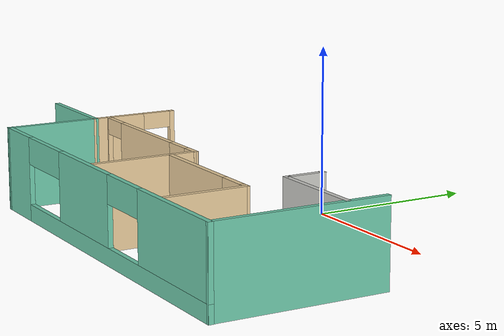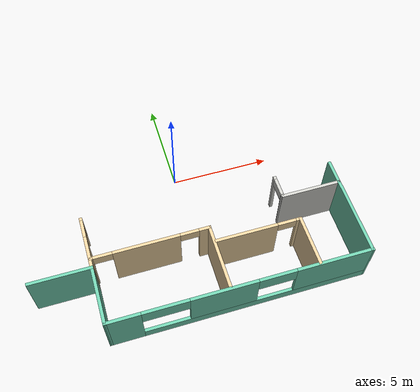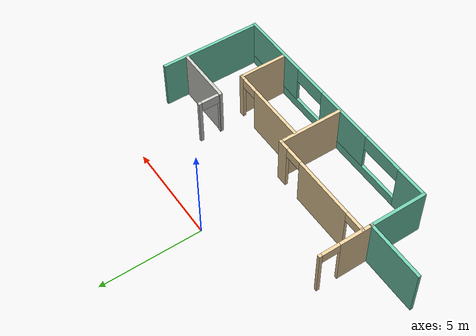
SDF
<sdf version="1.6">
 <model name="Building">
  <link name="Wall_269">
   <pose>-5.10842 -4.98169 0 0 -0 0</pose>
   <visual name="Wall_269_Visual">
    <pose>0 0 1.25 0 -0 0</pose>
    <geometry><box><size>0.15 0.15 2.5</size></box></geometry>
    <material>
     <script><uri>file://media/materials/scripts/gazebo.material</uri><name>Gazebo/Grey</name></script>
     <ambient>1 1 1 1</ambient>
     <shader type="pixel"/>
     <diffuse>0.7 0.7 0.7 1</diffuse>
     <specular>0.01 0.01 0.01 1</specular>
     <emissive>0 0 0 1</emissive>
    </material>
    <meta><layer>0</layer></meta>
   </visual>
   <collision name="Wall_269_Collision">
    <pose>0 0 1.25 0 -0 0</pose>
    <geometry><box><size>0.15 0.15 2.5</size></box></geometry>
    <surface>
     <friction>
      <ode><mu>1</mu><mu2>1</mu2><fdir1>0 0 0</fdir1><slip1>0</slip1><slip2>0</slip2></ode>
      <torsional>
       <coefficient>1</coefficient>
       <patch_radius>0</patch_radius>
       <surface_radius>0</surface_radius>
       <use_patch_radius>1</use_patch_radius>
       <ode><slip>0</slip></ode>
      </torsional>
     </friction>
     <bounce><restitution_coefficient>0</restitution_coefficient><threshold>1e+06</threshold></bounce>
     <contact>
      <collide_without_contact>0</collide_without_contact>
      <collide_without_contact_bitmask>1</collide_without_contact_bitmask>
      <collide_bitmask>1</collide_bitmask>
      <ode>
       <soft_cfm>0</soft_cfm>
       <soft_erp>0.2</soft_erp>
       <kp>1e+13</kp>
       <kd>1</kd>
       <max_vel>0.01</max_vel>
       <min_depth>0</min_depth>
      </ode>
      <bullet>
       <split_impulse>1</split_impulse>
       <split_impulse_penetration_threshold>-0.01</split_impulse_penetration_threshold>
       <soft_cfm>0</soft_cfm>
       <soft_erp>0.2</soft_erp>
       <kp>1e+13</kp>
       <kd>1</kd>
      </bullet>
     </contact>
    </surface>
   </collision>
  </link>
  <link name="Wall_270">
   <pose>-5.10842 -3.68169 0 0 -0 1.5708</pose>
   <visual name="Wall_270_Visual_0">
    <pose>-0.529099 0 1.25 0 -0 0</pose>
    <geometry><box><size>1.6918 0.15 2.5</size></box></geometry>
    <material>
     <script><uri>file://media/materials/scripts/gazebo.material</uri><name>Gazebo/Grey</name></script>
     <ambient>0.921569 0.807843 0.615686 1</ambient>
     <shader type="pixel"/>
     <diffuse>0.7 0.7 0.7 1</diffuse>
     <specular>0.01 0.01 0.01 1</specular>
     <emissive>0 0 0 1</emissive>
    </material>
    <meta><layer>0</layer></meta>
   </visual>
   <visual name="Wall_270_Visual_1">
    <pose>1.2959 0 1.25 0 -0 0</pose>
    <geometry><box><size>0.158198 0.15 2.5</size></box></geometry>
    <material>
     <script><uri>file://media/materials/scripts/gazebo.material</uri><name>Gazebo/Grey</name></script>
     <ambient>0.921569 0.807843 0.615686 1</ambient>
     <shader type="pixel"/>
     <diffuse>0.7 0.7 0.7 1</diffuse>
     <specular>0.01 0.01 0.01 1</specular>
     <emissive>0 0 0 1</emissive>
    </material>
    <meta><layer>0</layer></meta>
   </visual>
   <visual name="Wall_270_Visual_2">
    <pose>0.766802 0 2.25 0 -0 0</pose>
    <geometry><box><size>0.9 0.15 0.5</size></box></geometry>
    <material>
     <script><uri>file://media/materials/scripts/gazebo.material</uri><name>Gazebo/Grey</name></script>
     <ambient>0.921569 0.807843 0.615686 1</ambient>
     <shader type="pixel"/>
     <diffuse>0.7 0.7 0.7 1</diffuse>
     <specular>0.01 0.01 0.01 1</specular>
     <emissive>0 0 0 1</emissive>
    </material>
    <meta><layer>0</layer></meta>
   </visual>
   <collision name="Wall_270_Collision_0">
    <pose>-0.529099 0 1.25 0 -0 0</pose>
    <geometry><box><size>1.6918 0.15 2.5</size></box></geometry>
    <surface>
     <friction>
      <ode><mu>1</mu><mu2>1</mu2><fdir1>0 0 0</fdir1><slip1>0</slip1><slip2>0</slip2></ode>
      <torsional>
       <coefficient>1</coefficient>
       <patch_radius>0</patch_radius>
       <surface_radius>0</surface_radius>
       <use_patch_radius>1</use_patch_radius>
       <ode><slip>0</slip></ode>
      </torsional>
     </friction>
     <bounce><restitution_coefficient>0</restitution_coefficient><threshold>1e+06</threshold></bounce>
     <contact>
      <collide_without_contact>0</collide_without_contact>
      <collide_without_contact_bitmask>1</collide_without_contact_bitmask>
      <collide_bitmask>1</collide_bitmask>
      <ode>
       <soft_cfm>0</soft_cfm>
       <soft_erp>0.2</soft_erp>
       <kp>1e+13</kp>
       <kd>1</kd>
       <max_vel>0.01</max_vel>
       <min_depth>0</min_depth>
      </ode>
      <bullet>
       <split_impulse>1</split_impulse>
       <split_impulse_penetration_threshold>-0.01</split_impulse_penetration_threshold>
       <soft_cfm>0</soft_cfm>
       <soft_erp>0.2</soft_erp>
       <kp>1e+13</kp>
       <kd>1</kd>
      </bullet>
     </contact>
    </surface>
   </collision>
   <collision name="Wall_270_Collision_1">
    <pose>1.2959 0 1.25 0 -0 0</pose>
    <geometry><box><size>0.158198 0.15 2.5</size></box></geometry>
    <surface>
     <friction>
      <ode><mu>1</mu><mu2>1</mu2><fdir1>0 0 0</fdir1><slip1>0</slip1><slip2>0</slip2></ode>
      <torsional>
       <coefficient>1</coefficient>
       <patch_radius>0</patch_radius>
       <surface_radius>0</surface_radius>
       <use_patch_radius>1</use_patch_radius>
       <ode><slip>0</slip></ode>
      </torsional>
     </friction>
     <bounce><restitution_coefficient>0</restitution_coefficient><threshold>1e+06</threshold></bounce>
     <contact>
      <collide_without_contact>0</collide_without_contact>
      <collide_without_contact_bitmask>1</collide_without_contact_bitmask>
      <collide_bitmask>1</collide_bitmask>
      <ode>
       <soft_cfm>0</soft_cfm>
       <soft_erp>0.2</soft_erp>
       <kp>1e+13</kp>
       <kd>1</kd>
       <max_vel>0.01</max_vel>
       <min_depth>0</min_depth>
      </ode>
      <bullet>
       <split_impulse>1</split_impulse>
       <split_impulse_penetration_threshold>-0.01</split_impulse_penetration_threshold>
       <soft_cfm>0</soft_cfm>
       <soft_erp>0.2</soft_erp>
       <kp>1e+13</kp>
       <kd>1</kd>
      </bullet>
     </contact>
    </surface>
   </collision>
   <collision name="Wall_270_Collision_2">
    <pose>0.766802 0 2.25 0 -0 0</pose>
    <geometry><box><size>0.9 0.15 0.5</size></box></geometry>
    <surface>
     <friction>
      <ode><mu>1</mu><mu2>1</mu2><fdir1>0 0 0</fdir1><slip1>0</slip1><slip2>0</slip2></ode>
      <torsional>
       <coefficient>1</coefficient>
       <patch_radius>0</patch_radius>
       <surface_radius>0</surface_radius>
       <use_patch_radius>1</use_patch_radius>
       <ode><slip>0</slip></ode>
      </torsional>
     </friction>
     <bounce><restitution_coefficient>0</restitution_coefficient><threshold>1e+06</threshold></bounce>
     <contact>
      <collide_without_contact>0</collide_without_contact>
      <collide_without_contact_bitmask>1</collide_without_contact_bitmask>
      <collide_bitmask>1</collide_bitmask>
      <ode>
       <soft_cfm>0</soft_cfm>
       <soft_erp>0.2</soft_erp>
       <kp>1e+13</kp>
       <kd>1</kd>
       <max_vel>0.01</max_vel>
       <min_depth>0</min_depth>
      </ode>
      <bullet>
       <split_impulse>1</split_impulse>
       <split_impulse_penetration_threshold>-0.01</split_impulse_penetration_threshold>
       <soft_cfm>0</soft_cfm>
       <soft_erp>0.2</soft_erp>
       <kp>1e+13</kp>
       <kd>1</kd>
      </bullet>
     </contact>
    </surface>
   </collision>
  </link>
  <link name="Wall_273">
   <pose>-2.28397 -4.52295 0 0 -0 0.003202</pose>
   <visual name="Wall_273_Visual_0">
    <pose>-2.78056 0 1.25 0 -0 0</pose>
    <geometry><box><size>0.16425 0.15 2.5</size></box></geometry>
    <material>
     <script><uri>file://media/materials/scripts/gazebo.material</uri><name>Gazebo/Grey</name></script>
     <ambient>0.921569 0.807843 0.615686 1</ambient>
     <shader type="pixel"/>
     <diffuse>0.7 0.7 0.7 1</diffuse>
     <specular>0.01 0.01 0.01 1</specular>
     <emissive>0 0 0 1</emissive>
    </material>
    <meta><layer>0</layer></meta>
   </visual>
   <visual name="Wall_273_Visual_1">
    <pose>-0.206382 0 1.25 0 -0 0</pose>
    <geometry><box><size>3.18411 0.15 2.5</size></box></geometry>
    <material>
     <script><uri>file://media/materials/scripts/gazebo.material</uri><name>Gazebo/Grey</name></script>
     <ambient>0.921569 0.807843 0.615686 1</ambient>
     <shader type="pixel"/>
     <diffuse>0.7 0.7 0.7 1</diffuse>
     <specular>0.01 0.01 0.01 1</specular>
     <emissive>0 0 0 1</emissive>
    </material>
    <meta><layer>0</layer></meta>
   </visual>
   <visual name="Wall_273_Visual_2">
    <pose>2.57418 0 1.25 0 -0 0</pose>
    <geometry><box><size>0.577014 0.15 2.5</size></box></geometry>
    <material>
     <script><uri>file://media/materials/scripts/gazebo.material</uri><name>Gazebo/Grey</name></script>
     <ambient>0.921569 0.807843 0.615686 1</ambient>
     <shader type="pixel"/>
     <diffuse>0.7 0.7 0.7 1</diffuse>
     <specular>0.01 0.01 0.01 1</specular>
     <emissive>0 0 0 1</emissive>
    </material>
    <meta><layer>0</layer></meta>
   </visual>
   <visual name="Wall_273_Visual_3">
    <pose>-2.24844 0 2.25 0 -0 0</pose>
    <geometry><box><size>0.9 0.15 0.5</size></box></geometry>
    <material>
     <script><uri>file://media/materials/scripts/gazebo.material</uri><name>Gazebo/Grey</name></script>
     <ambient>0.921569 0.807843 0.615686 1</ambient>
     <shader type="pixel"/>
     <diffuse>0.7 0.7 0.7 1</diffuse>
     <specular>0.01 0.01 0.01 1</specular>
     <emissive>0 0 0 1</emissive>
    </material>
    <meta><layer>0</layer></meta>
   </visual>
   <visual name="Wall_273_Visual_4">
    <pose>1.83567 0 2.25 0 -0 0</pose>
    <geometry><box><size>0.9 0.15 0.5</size></box></geometry>
    <material>
     <script><uri>file://media/materials/scripts/gazebo.material</uri><name>Gazebo/Grey</name></script>
     <ambient>0.921569 0.807843 0.615686 1</ambient>
     <shader type="pixel"/>
     <diffuse>0.7 0.7 0.7 1</diffuse>
     <specular>0.01 0.01 0.01 1</specular>
     <emissive>0 0 0 1</emissive>
    </material>
    <meta><layer>0</layer></meta>
   </visual>
   <collision name="Wall_273_Collision_0">
    <pose>-2.78056 0 1.25 0 -0 0</pose>
    <geometry><box><size>0.16425 0.15 2.5</size></box></geometry>
    <surface>
     <friction>
      <ode><mu>1</mu><mu2>1</mu2><fdir1>0 0 0</fdir1><slip1>0</slip1><slip2>0</slip2></ode>
      <torsional>
       <coefficient>1</coefficient>
       <patch_radius>0</patch_radius>
       <surface_radius>0</surface_radius>
       <use_patch_radius>1</use_patch_radius>
       <ode><slip>0</slip></ode>
      </torsional>
     </friction>
     <bounce><restitution_coefficient>0</restitution_coefficient><threshold>1e+06</threshold></bounce>
     <contact>
      <collide_without_contact>0</collide_without_contact>
      <collide_without_contact_bitmask>1</collide_without_contact_bitmask>
      <collide_bitmask>1</collide_bitmask>
      <ode>
       <soft_cfm>0</soft_cfm>
       <soft_erp>0.2</soft_erp>
       <kp>1e+13</kp>
       <kd>1</kd>
       <max_vel>0.01</max_vel>
       <min_depth>0</min_depth>
      </ode>
      <bullet>
       <split_impulse>1</split_impulse>
       <split_impulse_penetration_threshold>-0.01</split_impulse_penetration_threshold>
       <soft_cfm>0</soft_cfm>
       <soft_erp>0.2</soft_erp>
       <kp>1e+13</kp>
       <kd>1</kd>
      </bullet>
     </contact>
    </surface>
   </collision>
   <collision name="Wall_273_Collision_1">
    <pose>-0.206382 0 1.25 0 -0 0</pose>
    <geometry><box><size>3.18411 0.15 2.5</size></box></geometry>
    <surface>
     <friction>
      <ode><mu>1</mu><mu2>1</mu2><fdir1>0 0 0</fdir1><slip1>0</slip1><slip2>0</slip2></ode>
      <torsional>
       <coefficient>1</coefficient>
       <patch_radius>0</patch_radius>
       <surface_radius>0</surface_radius>
       <use_patch_radius>1</use_patch_radius>
       <ode><slip>0</slip></ode>
      </torsional>
     </friction>
     <bounce><restitution_coefficient>0</restitution_coefficient><threshold>1e+06</threshold></bounce>
     <contact>
      <collide_without_contact>0</collide_without_contact>
      <collide_without_contact_bitmask>1</collide_without_contact_bitmask>
      <collide_bitmask>1</collide_bitmask>
      <ode>
       <soft_cfm>0</soft_cfm>
       <soft_erp>0.2</soft_erp>
       <kp>1e+13</kp>
       <kd>1</kd>
       <max_vel>0.01</max_vel>
       <min_depth>0</min_depth>
      </ode>
      <bullet>
       <split_impulse>1</split_impulse>
       <split_impulse_penetration_threshold>-0.01</split_impulse_penetration_threshold>
       <soft_cfm>0</soft_cfm>
       <soft_erp>0.2</soft_erp>
       <kp>1e+13</kp>
       <kd>1</kd>
      </bullet>
     </contact>
    </surface>
   </collision>
   <collision name="Wall_273_Collision_2">
    <pose>2.57418 0 1.25 0 -0 0</pose>
    <geometry><box><size>0.577014 0.15 2.5</size></box></geometry>
    <surface>
     <friction>
      <ode><mu>1</mu><mu2>1</mu2><fdir1>0 0 0</fdir1><slip1>0</slip1><slip2>0</slip2></ode>
      <torsional>
       <coefficient>1</coefficient>
       <patch_radius>0</patch_radius>
       <surface_radius>0</surface_radius>
       <use_patch_radius>1</use_patch_radius>
       <ode><slip>0</slip></ode>
      </torsional>
     </friction>
     <bounce><restitution_coefficient>0</restitution_coefficient><threshold>1e+06</threshold></bounce>
     <contact>
      <collide_without_contact>0</collide_without_contact>
      <collide_without_contact_bitmask>1</collide_without_contact_bitmask>
      <collide_bitmask>1</collide_bitmask>
      <ode>
       <soft_cfm>0</soft_cfm>
       <soft_erp>0.2</soft_erp>
       <kp>1e+13</kp>
       <kd>1</kd>
       <max_vel>0.01</max_vel>
       <min_depth>0</min_depth>
      </ode>
      <bullet>
       <split_impulse>1</split_impulse>
       <split_impulse_penetration_threshold>-0.01</split_impulse_penetration_threshold>
       <soft_cfm>0</soft_cfm>
       <soft_erp>0.2</soft_erp>
       <kp>1e+13</kp>
       <kd>1</kd>
      </bullet>
     </contact>
    </surface>
   </collision>
   <collision name="Wall_273_Collision_3">
    <pose>-2.24844 0 2.25 0 -0 0</pose>
    <geometry><box><size>0.9 0.15 0.5</size></box></geometry>
    <surface>
     <friction>
      <ode><mu>1</mu><mu2>1</mu2><fdir1>0 0 0</fdir1><slip1>0</slip1><slip2>0</slip2></ode>
      <torsional>
       <coefficient>1</coefficient>
       <patch_radius>0</patch_radius>
       <surface_radius>0</surface_radius>
       <use_patch_radius>1</use_patch_radius>
       <ode><slip>0</slip></ode>
      </torsional>
     </friction>
     <bounce><restitution_coefficient>0</restitution_coefficient><threshold>1e+06</threshold></bounce>
     <contact>
      <collide_without_contact>0</collide_without_contact>
      <collide_without_contact_bitmask>1</collide_without_contact_bitmask>
      <collide_bitmask>1</collide_bitmask>
      <ode>
       <soft_cfm>0</soft_cfm>
       <soft_erp>0.2</soft_erp>
       <kp>1e+13</kp>
       <kd>1</kd>
       <max_vel>0.01</max_vel>
       <min_depth>0</min_depth>
      </ode>
      <bullet>
       <split_impulse>1</split_impulse>
       <split_impulse_penetration_threshold>-0.01</split_impulse_penetration_threshold>
       <soft_cfm>0</soft_cfm>
       <soft_erp>0.2</soft_erp>
       <kp>1e+13</kp>
       <kd>1</kd>
      </bullet>
     </contact>
    </surface>
   </collision>
   <collision name="Wall_273_Collision_4">
    <pose>1.83567 0 2.25 0 -0 0</pose>
    <geometry><box><size>0.9 0.15 0.5</size></box></geometry>
    <surface>
     <friction>
      <ode><mu>1</mu><mu2>1</mu2><fdir1>0 0 0</fdir1><slip1>0</slip1><slip2>0</slip2></ode>
      <torsional>
       <coefficient>1</coefficient>
       <patch_radius>0</patch_radius>
       <surface_radius>0</surface_radius>
       <use_patch_radius>1</use_patch_radius>
       <ode><slip>0</slip></ode>
      </torsional>
     </friction>
     <bounce><restitution_coefficient>0</restitution_coefficient><threshold>1e+06</threshold></bounce>
     <contact>
      <collide_without_contact>0</collide_without_contact>
      <collide_without_contact_bitmask>1</collide_without_contact_bitmask>
      <collide_bitmask>1</collide_bitmask>
      <ode>
       <soft_cfm>0</soft_cfm>
       <soft_erp>0.2</soft_erp>
       <kp>1e+13</kp>
       <kd>1</kd>
       <max_vel>0.01</max_vel>
       <min_depth>0</min_depth>
      </ode>
      <bullet>
       <split_impulse>1</split_impulse>
       <split_impulse_penetration_threshold>-0.01</split_impulse_penetration_threshold>
       <soft_cfm>0</soft_cfm>
       <soft_erp>0.2</soft_erp>
       <kp>1e+13</kp>
       <kd>1</kd>
      </bullet>
     </contact>
    </surface>
   </collision>
  </link>
  <link name="Wall_274">
   <pose>0.503703 -6.07807 0 0 0 -1.5708</pose>
   <visual name="Wall_274_Visual">
    <pose>0 0 1.25 0 -0 0</pose>
    <geometry><box><size>3.25 0.15 2.5</size></box></geometry>
    <material>
     <script><uri>file://media/materials/scripts/gazebo.material</uri><name>Gazebo/Grey</name></script>
     <ambient>0.921569 0.807843 0.615686 1</ambient>
     <shader type="pixel"/>
     <diffuse>0.7 0.7 0.7 1</diffuse>
     <specular>0.01 0.01 0.01 1</specular>
     <emissive>0 0 0 1</emissive>
    </material>
    <meta><layer>0</layer></meta>
   </visual>
   <collision name="Wall_274_Collision">
    <pose>0 0 1.25 0 -0 0</pose>
    <geometry><box><size>3.25 0.15 2.5</size></box></geometry>
    <surface>
     <friction>
      <ode><mu>1</mu><mu2>1</mu2><fdir1>0 0 0</fdir1><slip1>0</slip1><slip2>0</slip2></ode>
      <torsional>
       <coefficient>1</coefficient>
       <patch_radius>0</patch_radius>
       <surface_radius>0</surface_radius>
       <use_patch_radius>1</use_patch_radius>
       <ode><slip>0</slip></ode>
      </torsional>
     </friction>
     <bounce><restitution_coefficient>0</restitution_coefficient><threshold>1e+06</threshold></bounce>
     <contact>
      <collide_without_contact>0</collide_without_contact>
      <collide_without_contact_bitmask>1</collide_without_contact_bitmask>
      <collide_bitmask>1</collide_bitmask>
      <ode>
       <soft_cfm>0</soft_cfm>
       <soft_erp>0.2</soft_erp>
       <kp>1e+13</kp>
       <kd>1</kd>
       <max_vel>0.01</max_vel>
       <min_depth>0</min_depth>
      </ode>
      <bullet>
       <split_impulse>1</split_impulse>
       <split_impulse_penetration_threshold>-0.01</split_impulse_penetration_threshold>
       <soft_cfm>0</soft_cfm>
       <soft_erp>0.2</soft_erp>
       <kp>1e+13</kp>
       <kd>1</kd>
      </bullet>
     </contact>
    </surface>
   </collision>
  </link>
  <link name="Wall_276">
   <pose>2.65197 -5.28598 0 0 -0 0</pose>
   <visual name="Wall_276_Visual_0">
    <pose>-0.59905 0 1.25 0 -0 0</pose>
    <geometry><box><size>3.0519 0.15 2.5</size></box></geometry>
    <material>
     <script><uri>file://media/materials/scripts/gazebo.material</uri><name>Gazebo/Grey</name></script>
     <ambient>0.921569 0.807843 0.615686 1</ambient>
     <shader type="pixel"/>
     <diffuse>0.7 0.7 0.7 1</diffuse>
     <specular>0.01 0.01 0.01 1</specular>
     <emissive>0 0 0 1</emissive>
    </material>
    <meta><layer>0</layer></meta>
   </visual>
   <visual name="Wall_276_Visual_1">
    <pose>1.97595 0 1.25 0 -0 0</pose>
    <geometry><box><size>0.298099 0.15 2.5</size></box></geometry>
    <material>
     <script><uri>file://media/materials/scripts/gazebo.material</uri><name>Gazebo/Grey</name></script>
     <ambient>0.921569 0.807843 0.615686 1</ambient>
     <shader type="pixel"/>
     <diffuse>0.7 0.7 0.7 1</diffuse>
     <specular>0.01 0.01 0.01 1</specular>
     <emissive>0 0 0 1</emissive>
    </material>
    <meta><layer>0</layer></meta>
   </visual>
   <visual name="Wall_276_Visual_2">
    <pose>1.3769 0 2.25 0 -0 0</pose>
    <geometry><box><size>0.9 0.15 0.5</size></box></geometry>
    <material>
     <script><uri>file://media/materials/scripts/gazebo.material</uri><name>Gazebo/Grey</name></script>
     <ambient>0.921569 0.807843 0.615686 1</ambient>
     <shader type="pixel"/>
     <diffuse>0.7 0.7 0.7 1</diffuse>
     <specular>0.01 0.01 0.01 1</specular>
     <emissive>0 0 0 1</emissive>
    </material>
    <meta><layer>0</layer></meta>
   </visual>
   <collision name="Wall_276_Collision_0">
    <pose>-0.59905 0 1.25 0 -0 0</pose>
    <geometry><box><size>3.0519 0.15 2.5</size></box></geometry>
    <surface>
     <friction>
      <ode><mu>1</mu><mu2>1</mu2><fdir1>0 0 0</fdir1><slip1>0</slip1><slip2>0</slip2></ode>
      <torsional>
       <coefficient>1</coefficient>
       <patch_radius>0</patch_radius>
       <surface_radius>0</surface_radius>
       <use_patch_radius>1</use_patch_radius>
       <ode><slip>0</slip></ode>
      </torsional>
     </friction>
     <bounce><restitution_coefficient>0</restitution_coefficient><threshold>1e+06</threshold></bounce>
     <contact>
      <collide_without_contact>0</collide_without_contact>
      <collide_without_contact_bitmask>1</collide_without_contact_bitmask>
      <collide_bitmask>1</collide_bitmask>
      <ode>
       <soft_cfm>0</soft_cfm>
       <soft_erp>0.2</soft_erp>
       <kp>1e+13</kp>
       <kd>1</kd>
       <max_vel>0.01</max_vel>
       <min_depth>0</min_depth>
      </ode>
      <bullet>
       <split_impulse>1</split_impulse>
       <split_impulse_penetration_threshold>-0.01</split_impulse_penetration_threshold>
       <soft_cfm>0</soft_cfm>
       <soft_erp>0.2</soft_erp>
       <kp>1e+13</kp>
       <kd>1</kd>
      </bullet>
     </contact>
    </surface>
   </collision>
   <collision name="Wall_276_Collision_1">
    <pose>1.97595 0 1.25 0 -0 0</pose>
    <geometry><box><size>0.298099 0.15 2.5</size></box></geometry>
    <surface>
     <friction>
      <ode><mu>1</mu><mu2>1</mu2><fdir1>0 0 0</fdir1><slip1>0</slip1><slip2>0</slip2></ode>
      <torsional>
       <coefficient>1</coefficient>
       <patch_radius>0</patch_radius>
       <surface_radius>0</surface_radius>
       <use_patch_radius>1</use_patch_radius>
       <ode><slip>0</slip></ode>
      </torsional>
     </friction>
     <bounce><restitution_coefficient>0</restitution_coefficient><threshold>1e+06</threshold></bounce>
     <contact>
      <collide_without_contact>0</collide_without_contact>
      <collide_without_contact_bitmask>1</collide_without_contact_bitmask>
      <collide_bitmask>1</collide_bitmask>
      <ode>
       <soft_cfm>0</soft_cfm>
       <soft_erp>0.2</soft_erp>
       <kp>1e+13</kp>
       <kd>1</kd>
       <max_vel>0.01</max_vel>
       <min_depth>0</min_depth>
      </ode>
      <bullet>
       <split_impulse>1</split_impulse>
       <split_impulse_penetration_threshold>-0.01</split_impulse_penetration_threshold>
       <soft_cfm>0</soft_cfm>
       <soft_erp>0.2</soft_erp>
       <kp>1e+13</kp>
       <kd>1</kd>
      </bullet>
     </contact>
    </surface>
   </collision>
   <collision name="Wall_276_Collision_2">
    <pose>1.3769 0 2.25 0 -0 0</pose>
    <geometry><box><size>0.9 0.15 0.5</size></box></geometry>
    <surface>
     <friction>
      <ode><mu>1</mu><mu2>1</mu2><fdir1>0 0 0</fdir1><slip1>0</slip1><slip2>0</slip2></ode>
      <torsional>
       <coefficient>1</coefficient>
       <patch_radius>0</patch_radius>
       <surface_radius>0</surface_radius>
       <use_patch_radius>1</use_patch_radius>
       <ode><slip>0</slip></ode>
      </torsional>
     </friction>
     <bounce><restitution_coefficient>0</restitution_coefficient><threshold>1e+06</threshold></bounce>
     <contact>
      <collide_without_contact>0</collide_without_contact>
      <collide_without_contact_bitmask>1</collide_without_contact_bitmask>
      <collide_bitmask>1</collide_bitmask>
      <ode>
       <soft_cfm>0</soft_cfm>
       <soft_erp>0.2</soft_erp>
       <kp>1e+13</kp>
       <kd>1</kd>
       <max_vel>0.01</max_vel>
       <min_depth>0</min_depth>
      </ode>
      <bullet>
       <split_impulse>1</split_impulse>
       <split_impulse_penetration_threshold>-0.01</split_impulse_penetration_threshold>
       <soft_cfm>0</soft_cfm>
       <soft_erp>0.2</soft_erp>
       <kp>1e+13</kp>
       <kd>1</kd>
      </bullet>
     </contact>
    </surface>
   </collision>
  </link>
  <link name="Wall_277">
   <pose>4.70728 -6.49036 0 0 0 -1.56635</pose>
   <visual name="Wall_277_Visual">
    <pose>0 0 1.25 0 -0 0</pose>
    <geometry><box><size>2.53755 0.15 2.5</size></box></geometry>
    <material>
     <script><uri>file://media/materials/scripts/gazebo.material</uri><name>Gazebo/Grey</name></script>
     <ambient>0.921569 0.807843 0.615686 1</ambient>
     <shader type="pixel"/>
     <diffuse>0.7 0.7 0.7 1</diffuse>
     <specular>0.01 0.01 0.01 1</specular>
     <emissive>0 0 0 1</emissive>
    </material>
    <meta><layer>0</layer></meta>
   </visual>
   <collision name="Wall_277_Collision">
    <pose>0 0 1.25 0 -0 0</pose>
    <geometry><box><size>2.53755 0.15 2.5</size></box></geometry>
    <surface>
     <friction>
      <ode><mu>1</mu><mu2>1</mu2><fdir1>0 0 0</fdir1><slip1>0</slip1><slip2>0</slip2></ode>
      <torsional>
       <coefficient>1</coefficient>
       <patch_radius>0</patch_radius>
       <surface_radius>0</surface_radius>
       <use_patch_radius>1</use_patch_radius>
       <ode><slip>0</slip></ode>
      </torsional>
     </friction>
     <bounce><restitution_coefficient>0</restitution_coefficient><threshold>1e+06</threshold></bounce>
     <contact>
      <collide_without_contact>0</collide_without_contact>
      <collide_without_contact_bitmask>1</collide_without_contact_bitmask>
      <collide_bitmask>1</collide_bitmask>
      <ode>
       <soft_cfm>0</soft_cfm>
       <soft_erp>0.2</soft_erp>
       <kp>1e+13</kp>
       <kd>1</kd>
       <max_vel>0.01</max_vel>
       <min_depth>0</min_depth>
      </ode>
      <bullet>
       <split_impulse>1</split_impulse>
       <split_impulse_penetration_threshold>-0.01</split_impulse_penetration_threshold>
       <soft_cfm>0</soft_cfm>
       <soft_erp>0.2</soft_erp>
       <kp>1e+13</kp>
       <kd>1</kd>
      </bullet>
     </contact>
    </surface>
   </collision>
  </link>
  <link name="Wall_280">
   <pose>5.77925 -3.8816 0 0 -0 0</pose>
   <visual name="Wall_280_Visual">
    <pose>0 0 1.25 0 -0 0</pose>
    <geometry><box><size>3 0.15 2.5</size></box></geometry>
    <material>
     <script><uri>file://media/materials/scripts/gazebo.material</uri><name>Gazebo/CeilingTiled</name></script>
     <ambient>0.921569 0.807843 0.615686 1</ambient>
     <shader type="pixel"/>
     <diffuse>1 1 1 1</diffuse>
     <specular>0 0 0 1</specular>
     <emissive>0 0 0 1</emissive>
    </material>
    <meta><layer>0</layer></meta>
   </visual>
   <collision name="Wall_280_Collision">
    <pose>0 0 1.25 0 -0 0</pose>
    <geometry><box><size>3 0.15 2.5</size></box></geometry>
    <surface>
     <friction>
      <ode><mu>1</mu><mu2>1</mu2><fdir1>0 0 0</fdir1><slip1>0</slip1><slip2>0</slip2></ode>
      <torsional>
       <coefficient>1</coefficient>
       <patch_radius>0</patch_radius>
       <surface_radius>0</surface_radius>
       <use_patch_radius>1</use_patch_radius>
       <ode><slip>0</slip></ode>
      </torsional>
     </friction>
     <bounce><restitution_coefficient>0</restitution_coefficient><threshold>1e+06</threshold></bounce>
     <contact>
      <collide_without_contact>0</collide_without_contact>
      <collide_without_contact_bitmask>1</collide_without_contact_bitmask>
      <collide_bitmask>1</collide_bitmask>
      <ode>
       <soft_cfm>0</soft_cfm>
       <soft_erp>0.2</soft_erp>
       <kp>1e+13</kp>
       <kd>1</kd>
       <max_vel>0.01</max_vel>
       <min_depth>0</min_depth>
      </ode>
      <bullet>
       <split_impulse>1</split_impulse>
       <split_impulse_penetration_threshold>-0.01</split_impulse_penetration_threshold>
       <soft_cfm>0</soft_cfm>
       <soft_erp>0.2</soft_erp>
       <kp>1e+13</kp>
       <kd>1</kd>
      </bullet>
     </contact>
    </surface>
   </collision>
  </link>
  <link name="Wall_343">
   <pose>4.35425 -3.3316 0 0 -0 1.5708</pose>
   <visual name="Wall_343_Visual_0">
    <pose>-0.532668 0 1.25 0 -0 0</pose>
    <geometry><box><size>0.184664 0.15 2.5</size></box></geometry>
    <material>
     <script><uri>file://media/materials/scripts/gazebo.material</uri><name>Gazebo/CeilingTiled</name></script>
     <ambient>0.921569 0.807843 0.615686 1</ambient>
     <shader type="pixel"/>
     <diffuse>1 1 1 1</diffuse>
     <specular>0 0 0 1</specular>
     <emissive>0 0 0 1</emissive>
    </material>
    <meta><layer>0</layer></meta>
   </visual>
   <visual name="Wall_343_Visual_1">
    <pose>0.542332 0 1.25 0 -0 0</pose>
    <geometry><box><size>0.165336 0.15 2.5</size></box></geometry>
    <material>
     <script><uri>file://media/materials/scripts/gazebo.material</uri><name>Gazebo/CeilingTiled</name></script>
     <ambient>0.921569 0.807843 0.615686 1</ambient>
     <shader type="pixel"/>
     <diffuse>1 1 1 1</diffuse>
     <specular>0 0 0 1</specular>
     <emissive>0 0 0 1</emissive>
    </material>
    <meta><layer>0</layer></meta>
   </visual>
   <visual name="Wall_343_Visual_2">
    <pose>0.009664 0 2.25 0 -0 0</pose>
    <geometry><box><size>0.9 0.15 0.5</size></box></geometry>
    <material>
     <script><uri>file://media/materials/scripts/gazebo.material</uri><name>Gazebo/CeilingTiled</name></script>
     <ambient>0.921569 0.807843 0.615686 1</ambient>
     <shader type="pixel"/>
     <diffuse>1 1 1 1</diffuse>
     <specular>0 0 0 1</specular>
     <emissive>0 0 0 1</emissive>
    </material>
    <meta><layer>0</layer></meta>
   </visual>
   <collision name="Wall_343_Collision_0">
    <pose>-0.532668 0 1.25 0 -0 0</pose>
    <geometry><box><size>0.184664 0.15 2.5</size></box></geometry>
    <surface>
     <friction>
      <ode><mu>1</mu><mu2>1</mu2><fdir1>0 0 0</fdir1><slip1>0</slip1><slip2>0</slip2></ode>
      <torsional>
       <coefficient>1</coefficient>
       <patch_radius>0</patch_radius>
       <surface_radius>0</surface_radius>
       <use_patch_radius>1</use_patch_radius>
       <ode><slip>0</slip></ode>
      </torsional>
     </friction>
     <bounce><restitution_coefficient>0</restitution_coefficient><threshold>1e+06</threshold></bounce>
     <contact>
      <collide_without_contact>0</collide_without_contact>
      <collide_without_contact_bitmask>1</collide_without_contact_bitmask>
      <collide_bitmask>1</collide_bitmask>
      <ode>
       <soft_cfm>0</soft_cfm>
       <soft_erp>0.2</soft_erp>
       <kp>1e+13</kp>
       <kd>1</kd>
       <max_vel>0.01</max_vel>
       <min_depth>0</min_depth>
      </ode>
      <bullet>
       <split_impulse>1</split_impulse>
       <split_impulse_penetration_threshold>-0.01</split_impulse_penetration_threshold>
       <soft_cfm>0</soft_cfm>
       <soft_erp>0.2</soft_erp>
       <kp>1e+13</kp>
       <kd>1</kd>
      </bullet>
     </contact>
    </surface>
   </collision>
   <collision name="Wall_343_Collision_1">
    <pose>0.542332 0 1.25 0 -0 0</pose>
    <geometry><box><size>0.165336 0.15 2.5</size></box></geometry>
    <surface>
     <friction>
      <ode><mu>1</mu><mu2>1</mu2><fdir1>0 0 0</fdir1><slip1>0</slip1><slip2>0</slip2></ode>
      <torsional>
       <coefficient>1</coefficient>
       <patch_radius>0</patch_radius>
       <surface_radius>0</surface_radius>
       <use_patch_radius>1</use_patch_radius>
       <ode><slip>0</slip></ode>
      </torsional>
     </friction>
     <bounce><restitution_coefficient>0</restitution_coefficient><threshold>1e+06</threshold></bounce>
     <contact>
      <collide_without_contact>0</collide_without_contact>
      <collide_without_contact_bitmask>1</collide_without_contact_bitmask>
      <collide_bitmask>1</collide_bitmask>
      <ode>
       <soft_cfm>0</soft_cfm>
       <soft_erp>0.2</soft_erp>
       <kp>1e+13</kp>
       <kd>1</kd>
       <max_vel>0.01</max_vel>
       <min_depth>0</min_depth>
      </ode>
      <bullet>
       <split_impulse>1</split_impulse>
       <split_impulse_penetration_threshold>-0.01</split_impulse_penetration_threshold>
       <soft_cfm>0</soft_cfm>
       <soft_erp>0.2</soft_erp>
       <kp>1e+13</kp>
       <kd>1</kd>
      </bullet>
     </contact>
    </surface>
   </collision>
   <collision name="Wall_343_Collision_2">
    <pose>0.009664 0 2.25 0 -0 0</pose>
    <geometry><box><size>0.9 0.15 0.5</size></box></geometry>
    <surface>
     <friction>
      <ode><mu>1</mu><mu2>1</mu2><fdir1>0 0 0</fdir1><slip1>0</slip1><slip2>0</slip2></ode>
      <torsional>
       <coefficient>1</coefficient>
       <patch_radius>0</patch_radius>
       <surface_radius>0</surface_radius>
       <use_patch_radius>1</use_patch_radius>
       <ode><slip>0</slip></ode>
      </torsional>
     </friction>
     <bounce><restitution_coefficient>0</restitution_coefficient><threshold>1e+06</threshold></bounce>
     <contact>
      <collide_without_contact>0</collide_without_contact>
      <collide_without_contact_bitmask>1</collide_without_contact_bitmask>
      <collide_bitmask>1</collide_bitmask>
      <ode>
       <soft_cfm>0</soft_cfm>
       <soft_erp>0.2</soft_erp>
       <kp>1e+13</kp>
       <kd>1</kd>
       <max_vel>0.01</max_vel>
       <min_depth>0</min_depth>
      </ode>
      <bullet>
       <split_impulse>1</split_impulse>
       <split_impulse_penetration_threshold>-0.01</split_impulse_penetration_threshold>
       <soft_cfm>0</soft_cfm>
       <soft_erp>0.2</soft_erp>
       <kp>1e+13</kp>
       <kd>1</kd>
      </bullet>
     </contact>
    </surface>
   </collision>
  </link>
  <link name="Wall_6">
   <pose>-6.53342 -4.98169 0 0 -0 0</pose>
   <visual name="Wall_6_Visual">
    <pose>0 0 1.25 0 -0 0</pose>
    <geometry><box><size>3 0.15 2.5</size></box></geometry>
    <material>
     <script><uri>file://media/materials/scripts/gazebo.material</uri><name>Gazebo/Grey</name></script>
     <ambient>0.435294 0.796078 0.67451 1</ambient>
     <shader type="pixel"/>
     <diffuse>0.7 0.7 0.7 1</diffuse>
     <specular>0.01 0.01 0.01 1</specular>
     <emissive>0 0 0 1</emissive>
    </material>
    <meta><layer>0</layer></meta>
   </visual>
   <collision name="Wall_6_Collision">
    <pose>0 0 1.25 0 -0 0</pose>
    <geometry><box><size>3 0.15 2.5</size></box></geometry>
    <surface>
     <friction>
      <ode><mu>1</mu><mu2>1</mu2><fdir1>0 0 0</fdir1><slip1>0</slip1><slip2>0</slip2></ode>
      <torsional>
       <coefficient>1</coefficient>
       <patch_radius>0</patch_radius>
       <surface_radius>0</surface_radius>
       <use_patch_radius>1</use_patch_radius>
       <ode><slip>0</slip></ode>
      </torsional>
     </friction>
     <bounce><restitution_coefficient>0</restitution_coefficient><threshold>1e+06</threshold></bounce>
     <contact>
      <collide_without_contact>0</collide_without_contact>
      <collide_without_contact_bitmask>1</collide_without_contact_bitmask>
      <collide_bitmask>1</collide_bitmask>
      <ode>
       <soft_cfm>0</soft_cfm>
       <soft_erp>0.2</soft_erp>
       <kp>1e+13</kp>
       <kd>1</kd>
       <max_vel>0.01</max_vel>
       <min_depth>0</min_depth>
      </ode>
      <bullet>
       <split_impulse>1</split_impulse>
       <split_impulse_penetration_threshold>-0.01</split_impulse_penetration_threshold>
       <soft_cfm>0</soft_cfm>
       <soft_erp>0.2</soft_erp>
       <kp>1e+13</kp>
       <kd>1</kd>
      </bullet>
     </contact>
    </surface>
   </collision>
  </link>
  <link name="Wall_7">
   <pose>-5.11207 -6.35588 0 0 0 -1.57345</pose>
   <visual name="Wall_7_Visual">
    <pose>0 0 1.25 0 -0 0</pose>
    <geometry><box><size>2.89844 0.15 2.5</size></box></geometry>
    <material>
     <script><uri>file://media/materials/scripts/gazebo.material</uri><name>Gazebo/Grey</name></script>
     <ambient>0.435294 0.796078 0.67451 1</ambient>
     <shader type="pixel"/>
     <diffuse>0.7 0.7 0.7 1</diffuse>
     <specular>0.01 0.01 0.01 1</specular>
     <emissive>0 0 0 1</emissive>
    </material>
    <meta><layer>0</layer></meta>
   </visual>
   <collision name="Wall_7_Collision">
    <pose>0 0 1.25 0 -0 0</pose>
    <geometry><box><size>2.89844 0.15 2.5</size></box></geometry>
    <surface>
     <friction>
      <ode><mu>1</mu><mu2>1</mu2><fdir1>0 0 0</fdir1><slip1>0</slip1><slip2>0</slip2></ode>
      <torsional>
       <coefficient>1</coefficient>
       <patch_radius>0</patch_radius>
       <surface_radius>0</surface_radius>
       <use_patch_radius>1</use_patch_radius>
       <ode><slip>0</slip></ode>
      </torsional>
     </friction>
     <bounce><restitution_coefficient>0</restitution_coefficient><threshold>1e+06</threshold></bounce>
     <contact>
      <collide_without_contact>0</collide_without_contact>
      <collide_without_contact_bitmask>1</collide_without_contact_bitmask>
      <collide_bitmask>1</collide_bitmask>
      <ode>
       <soft_cfm>0</soft_cfm>
       <soft_erp>0.2</soft_erp>
       <kp>1e+13</kp>
       <kd>1</kd>
       <max_vel>0.01</max_vel>
       <min_depth>0</min_depth>
      </ode>
      <bullet>
       <split_impulse>1</split_impulse>
       <split_impulse_penetration_threshold>-0.01</split_impulse_penetration_threshold>
       <soft_cfm>0</soft_cfm>
       <soft_erp>0.2</soft_erp>
       <kp>1e+13</kp>
       <kd>1</kd>
      </bullet>
     </contact>
    </surface>
   </collision>
  </link>
  <link name="Wall_8">
   <pose>1.06991 -7.73007 0 0 -0 0</pose>
   <visual name="Wall_8_Visual_0">
    <pose>-5.42529 0 1.25 0 -0 0</pose>
    <geometry><box><size>1.64942 0.15 2.5</size></box></geometry>
    <material>
     <script><uri>file://media/materials/scripts/gazebo.material</uri><name>Gazebo/Grey</name></script>
     <ambient>0.435294 0.796078 0.67451 1</ambient>
     <shader type="pixel"/>
     <diffuse>0.7 0.7 0.7 1</diffuse>
     <specular>0.01 0.01 0.01 1</specular>
     <emissive>0 0 0 1</emissive>
    </material>
    <meta><layer>0</layer></meta>
   </visual>
   <visual name="Wall_8_Visual_1">
    <pose>0.824709 0 0.25 0 -0 0</pose>
    <geometry><box><size>10.8506 0.15 0.5</size></box></geometry>
    <material>
     <script><uri>file://media/materials/scripts/gazebo.material</uri><name>Gazebo/Grey</name></script>
     <ambient>0.435294 0.796078 0.67451 1</ambient>
     <shader type="pixel"/>
     <diffuse>0.7 0.7 0.7 1</diffuse>
     <specular>0.01 0.01 0.01 1</specular>
     <emissive>0 0 0 1</emissive>
    </material>
    <meta><layer>0</layer></meta>
   </visual>
   <visual name="Wall_8_Visual_2">
    <pose>-0.844657 0 1.5 0 -0 0</pose>
    <geometry><box><size>3.16585 0.15 2</size></box></geometry>
    <material>
     <script><uri>file://media/materials/scripts/gazebo.material</uri><name>Gazebo/Grey</name></script>
     <ambient>0.435294 0.796078 0.67451 1</ambient>
     <shader type="pixel"/>
     <diffuse>0.7 0.7 0.7 1</diffuse>
     <specular>0.01 0.01 0.01 1</specular>
     <emissive>0 0 0 1</emissive>
    </material>
    <meta><layer>0</layer></meta>
   </visual>
   <visual name="Wall_8_Visual_3">
    <pose>4.38652 0 1.5 0 -0 0</pose>
    <geometry><box><size>3.72696 0.15 2</size></box></geometry>
    <material>
     <script><uri>file://media/materials/scripts/gazebo.material</uri><name>Gazebo/Grey</name></script>
     <ambient>0.435294 0.796078 0.67451 1</ambient>
     <shader type="pixel"/>
     <diffuse>0.7 0.7 0.7 1</diffuse>
     <specular>0.01 0.01 0.01 1</specular>
     <emissive>0 0 0 1</emissive>
    </material>
    <meta><layer>0</layer></meta>
   </visual>
   <visual name="Wall_8_Visual_4">
    <pose>-3.51408 0 2.1 0 -0 0</pose>
    <geometry><box><size>2.173 0.15 0.8</size></box></geometry>
    <material>
     <script><uri>file://media/materials/scripts/gazebo.material</uri><name>Gazebo/Grey</name></script>
     <ambient>0.435294 0.796078 0.67451 1</ambient>
     <shader type="pixel"/>
     <diffuse>0.7 0.7 0.7 1</diffuse>
     <specular>0.01 0.01 0.01 1</specular>
     <emissive>0 0 0 1</emissive>
    </material>
    <meta><layer>0</layer></meta>
   </visual>
   <visual name="Wall_8_Visual_5">
    <pose>1.63065 0 2.1 0 -0 0</pose>
    <geometry><box><size>1.78477 0.15 0.8</size></box></geometry>
    <material>
     <script><uri>file://media/materials/scripts/gazebo.material</uri><name>Gazebo/Grey</name></script>
     <ambient>0.435294 0.796078 0.67451 1</ambient>
     <shader type="pixel"/>
     <diffuse>0.7 0.7 0.7 1</diffuse>
     <specular>0.01 0.01 0.01 1</specular>
     <emissive>0 0 0 1</emissive>
    </material>
    <meta><layer>0</layer></meta>
   </visual>
   <collision name="Wall_8_Collision_0">
    <pose>-5.42529 0 1.25 0 -0 0</pose>
    <geometry><box><size>1.64942 0.15 2.5</size></box></geometry>
    <surface>
     <friction>
      <ode><mu>1</mu><mu2>1</mu2><fdir1>0 0 0</fdir1><slip1>0</slip1><slip2>0</slip2></ode>
      <torsional>
       <coefficient>1</coefficient>
       <patch_radius>0</patch_radius>
       <surface_radius>0</surface_radius>
       <use_patch_radius>1</use_patch_radius>
       <ode><slip>0</slip></ode>
      </torsional>
     </friction>
     <bounce><restitution_coefficient>0</restitution_coefficient><threshold>1e+06</threshold></bounce>
     <contact>
      <collide_without_contact>0</collide_without_contact>
      <collide_without_contact_bitmask>1</collide_without_contact_bitmask>
      <collide_bitmask>1</collide_bitmask>
      <ode>
       <soft_cfm>0</soft_cfm>
       <soft_erp>0.2</soft_erp>
       <kp>1e+13</kp>
       <kd>1</kd>
       <max_vel>0.01</max_vel>
       <min_depth>0</min_depth>
      </ode>
      <bullet>
       <split_impulse>1</split_impulse>
       <split_impulse_penetration_threshold>-0.01</split_impulse_penetration_threshold>
       <soft_cfm>0</soft_cfm>
       <soft_erp>0.2</soft_erp>
       <kp>1e+13</kp>
       <kd>1</kd>
      </bullet>
     </contact>
    </surface>
   </collision>
   <collision name="Wall_8_Collision_1">
    <pose>0.824709 0 0.25 0 -0 0</pose>
    <geometry><box><size>10.8506 0.15 0.5</size></box></geometry>
    <surface>
     <friction>
      <ode><mu>1</mu><mu2>1</mu2><fdir1>0 0 0</fdir1><slip1>0</slip1><slip2>0</slip2></ode>
      <torsional>
       <coefficient>1</coefficient>
       <patch_radius>0</patch_radius>
       <surface_radius>0</surface_radius>
       <use_patch_radius>1</use_patch_radius>
       <ode><slip>0</slip></ode>
      </torsional>
     </friction>
     <bounce><restitution_coefficient>0</restitution_coefficient><threshold>1e+06</threshold></bounce>
     <contact>
      <collide_without_contact>0</collide_without_contact>
      <collide_without_contact_bitmask>1</collide_without_contact_bitmask>
      <collide_bitmask>1</collide_bitmask>
      <ode>
       <soft_cfm>0</soft_cfm>
       <soft_erp>0.2</soft_erp>
       <kp>1e+13</kp>
       <kd>1</kd>
       <max_vel>0.01</max_vel>
       <min_depth>0</min_depth>
      </ode>
      <bullet>
       <split_impulse>1</split_impulse>
       <split_impulse_penetration_threshold>-0.01</split_impulse_penetration_threshold>
       <soft_cfm>0</soft_cfm>
       <soft_erp>0.2</soft_erp>
       <kp>1e+13</kp>
       <kd>1</kd>
      </bullet>
     </contact>
    </surface>
   </collision>
   <collision name="Wall_8_Collision_2">
    <pose>-0.844657 0 1.5 0 -0 0</pose>
    <geometry><box><size>3.16585 0.15 2</size></box></geometry>
    <surface>
     <friction>
      <ode><mu>1</mu><mu2>1</mu2><fdir1>0 0 0</fdir1><slip1>0</slip1><slip2>0</slip2></ode>
      <torsional>
       <coefficient>1</coefficient>
       <patch_radius>0</patch_radius>
       <surface_radius>0</surface_radius>
       <use_patch_radius>1</use_patch_radius>
       <ode><slip>0</slip></ode>
      </torsional>
     </friction>
     <bounce><restitution_coefficient>0</restitution_coefficient><threshold>1e+06</threshold></bounce>
     <contact>
      <collide_without_contact>0</collide_without_contact>
      <collide_without_contact_bitmask>1</collide_without_contact_bitmask>
      <collide_bitmask>1</collide_bitmask>
      <ode>
       <soft_cfm>0</soft_cfm>
       <soft_erp>0.2</soft_erp>
       <kp>1e+13</kp>
       <kd>1</kd>
       <max_vel>0.01</max_vel>
       <min_depth>0</min_depth>
      </ode>
      <bullet>
       <split_impulse>1</split_impulse>
       <split_impulse_penetration_threshold>-0.01</split_impulse_penetration_threshold>
       <soft_cfm>0</soft_cfm>
       <soft_erp>0.2</soft_erp>
       <kp>1e+13</kp>
       <kd>1</kd>
      </bullet>
     </contact>
    </surface>
   </collision>
   <collision name="Wall_8_Collision_4">
    <pose>-3.51408 0 2.1 0 -0 0</pose>
    <geometry><box><size>2.173 0.15 0.8</size></box></geometry>
    <surface>
     <friction>
      <ode><mu>1</mu><mu2>1</mu2><fdir1>0 0 0</fdir1><slip1>0</slip1><slip2>0</slip2></ode>
      <torsional>
       <coefficient>1</coefficient>
       <patch_radius>0</patch_radius>
       <surface_radius>0</surface_radius>
       <use_patch_radius>1</use_patch_radius>
       <ode><slip>0</slip></ode>
      </torsional>
     </friction>
     <bounce><restitution_coefficient>0</restitution_coefficient><threshold>1e+06</threshold></bounce>
     <contact>
      <collide_without_contact>0</collide_without_contact>
      <collide_without_contact_bitmask>1</collide_without_contact_bitmask>
      <collide_bitmask>1</collide_bitmask>
      <ode>
       <soft_cfm>0</soft_cfm>
       <soft_erp>0.2</soft_erp>
       <kp>1e+13</kp>
       <kd>1</kd>
       <max_vel>0.01</max_vel>
       <min_depth>0</min_depth>
      </ode>
      <bullet>
       <split_impulse>1</split_impulse>
       <split_impulse_penetration_threshold>-0.01</split_impulse_penetration_threshold>
       <soft_cfm>0</soft_cfm>
       <soft_erp>0.2</soft_erp>
       <kp>1e+13</kp>
       <kd>1</kd>
      </bullet>
     </contact>
    </surface>
   </collision>
   <collision name="Wall_8_Collision_3">
    <pose>4.38652 0 1.5 0 -0 0</pose>
    <geometry><box><size>3.72696 0.15 2</size></box></geometry>
    <surface>
     <friction>
      <ode><mu>1</mu><mu2>1</mu2><fdir1>0 0 0</fdir1><slip1>0</slip1><slip2>0</slip2></ode>
      <torsional>
       <coefficient>1</coefficient>
       <patch_radius>0</patch_radius>
       <surface_radius>0</surface_radius>
       <use_patch_radius>1</use_patch_radius>
       <ode><slip>0</slip></ode>
      </torsional>
     </friction>
     <bounce><restitution_coefficient>0</restitution_coefficient><threshold>1e+06</threshold></bounce>
     <contact>
      <collide_without_contact>0</collide_without_contact>
      <collide_without_contact_bitmask>1</collide_without_contact_bitmask>
      <collide_bitmask>1</collide_bitmask>
      <ode>
       <soft_cfm>0</soft_cfm>
       <soft_erp>0.2</soft_erp>
       <kp>1e+13</kp>
       <kd>1</kd>
       <max_vel>0.01</max_vel>
       <min_depth>0</min_depth>
      </ode>
      <bullet>
       <split_impulse>1</split_impulse>
       <split_impulse_penetration_threshold>-0.01</split_impulse_penetration_threshold>
       <soft_cfm>0</soft_cfm>
       <soft_erp>0.2</soft_erp>
       <kp>1e+13</kp>
       <kd>1</kd>
      </bullet>
     </contact>
    </surface>
   </collision>
   <collision name="Wall_8_Collision_5">
    <pose>1.63065 0 2.1 0 -0 0</pose>
    <geometry><box><size>1.78477 0.15 0.8</size></box></geometry>
    <surface>
     <friction>
      <ode><mu>1</mu><mu2>1</mu2><fdir1>0 0 0</fdir1><slip1>0</slip1><slip2>0</slip2></ode>
      <torsional>
       <coefficient>1</coefficient>
       <patch_radius>0</patch_radius>
       <surface_radius>0</surface_radius>
       <use_patch_radius>1</use_patch_radius>
       <ode><slip>0</slip></ode>
      </torsional>
     </friction>
     <bounce><restitution_coefficient>0</restitution_coefficient><threshold>1e+06</threshold></bounce>
     <contact>
      <collide_without_contact>0</collide_without_contact>
      <collide_without_contact_bitmask>1</collide_without_contact_bitmask>
      <collide_bitmask>1</collide_bitmask>
      <ode>
       <soft_cfm>0</soft_cfm>
       <soft_erp>0.2</soft_erp>
       <kp>1e+13</kp>
       <kd>1</kd>
       <max_vel>0.01</max_vel>
       <min_depth>0</min_depth>
      </ode>
      <bullet>
       <split_impulse>1</split_impulse>
       <split_impulse_penetration_threshold>-0.01</split_impulse_penetration_threshold>
       <soft_cfm>0</soft_cfm>
       <soft_erp>0.2</soft_erp>
       <kp>1e+13</kp>
       <kd>1</kd>
      </bullet>
     </contact>
    </surface>
   </collision>
  </link>
  <link name="Wall_9">
   <pose>7.23793 -5.23088 0 0 -0 1.56934</pose>
   <visual name="Wall_9_Visual">
    <pose>0 0 1.25 0 -0 0</pose>
    <geometry><box><size>5.14841 0.15 2.5</size></box></geometry>
    <material>
     <script><uri>file://media/materials/scripts/gazebo.material</uri><name>Gazebo/Grey</name></script>
     <ambient>0.435294 0.796078 0.67451 1</ambient>
     <shader type="pixel"/>
     <diffuse>0.7 0.7 0.7 1</diffuse>
     <specular>0.01 0.01 0.01 1</specular>
     <emissive>0 0 0 1</emissive>
    </material>
    <meta><layer>0</layer></meta>
   </visual>
   <collision name="Wall_9_Collision">
    <pose>0 0 1.25 0 -0 0</pose>
    <geometry><box><size>5.14841 0.15 2.5</size></box></geometry>
    <surface>
     <friction>
      <ode><mu>1</mu><mu2>1</mu2><fdir1>0 0 0</fdir1><slip1>0</slip1><slip2>0</slip2></ode>
      <torsional>
       <coefficient>1</coefficient>
       <patch_radius>0</patch_radius>
       <surface_radius>0</surface_radius>
       <use_patch_radius>1</use_patch_radius>
       <ode><slip>0</slip></ode>
      </torsional>
     </friction>
     <bounce><restitution_coefficient>0</restitution_coefficient><threshold>1e+06</threshold></bounce>
     <contact>
      <collide_without_contact>0</collide_without_contact>
      <collide_without_contact_bitmask>1</collide_without_contact_bitmask>
      <collide_bitmask>1</collide_bitmask>
      <ode>
       <soft_cfm>0</soft_cfm>
       <soft_erp>0.2</soft_erp>
       <kp>1e+13</kp>
       <kd>1</kd>
       <max_vel>0.01</max_vel>
       <min_depth>0</min_depth>
      </ode>
      <bullet>
       <split_impulse>1</split_impulse>
       <split_impulse_penetration_threshold>-0.01</split_impulse_penetration_threshold>
       <soft_cfm>0</soft_cfm>
       <soft_erp>0.2</soft_erp>
       <kp>1e+13</kp>
       <kd>1</kd>
      </bullet>
     </contact>
    </surface>
   </collision>
  </link>
  <static>1</static>
 </model>
</sdf>
